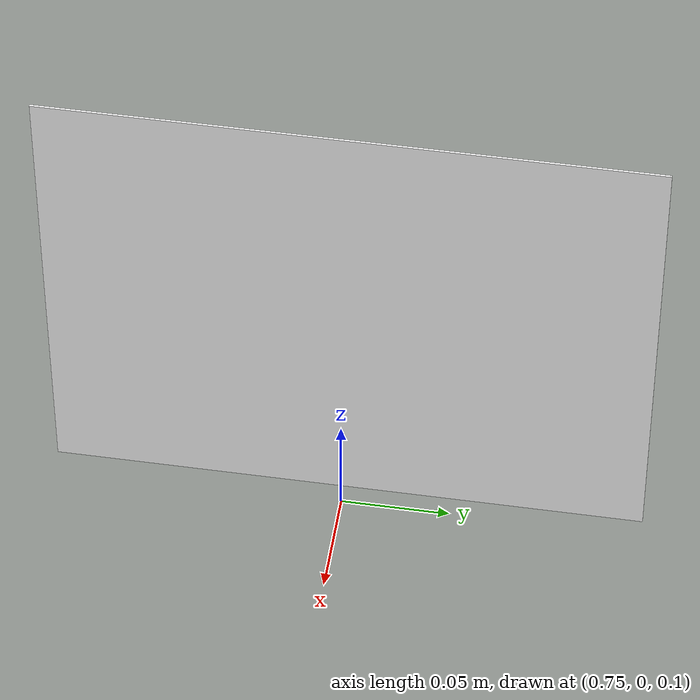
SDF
<?xml version="1.0"?>
<sdf version="1.8">
  <model name="checkerboard_8x6">
    <static>true</static>
    <pose>0.73 0.0 0.2 0 0 0</pose>
    <link name="link">
      <visual name="visual">
        <geometry>
          <box>
            <size>0.001 0.275 0.225</size>
          </box>
        </geometry>
        <material>
          <diffuse>1 1 1 1</diffuse>
          <specular>0.05 0.05 0.05 1</specular>
          <pbr>
            <metal>
              <albedo_map>model://markers/checkerboard_8x6/meshes/checkerboard_8x6.png</albedo_map>
              <emissive_map>model://markers/checkerboard_8x6/meshes/checkerboard_8x6.png</emissive_map>
              <metalness>0.0</metalness>
              <roughness>1.0</roughness>
            </metal>
          </pbr>
        </material>
      </visual>
      <collision name="collision">
        <geometry>
          <box>
            <size>0.001 0.275 0.225</size>
          </box>
        </geometry>
      </collision>
    </link>
  </model>
</sdf>
